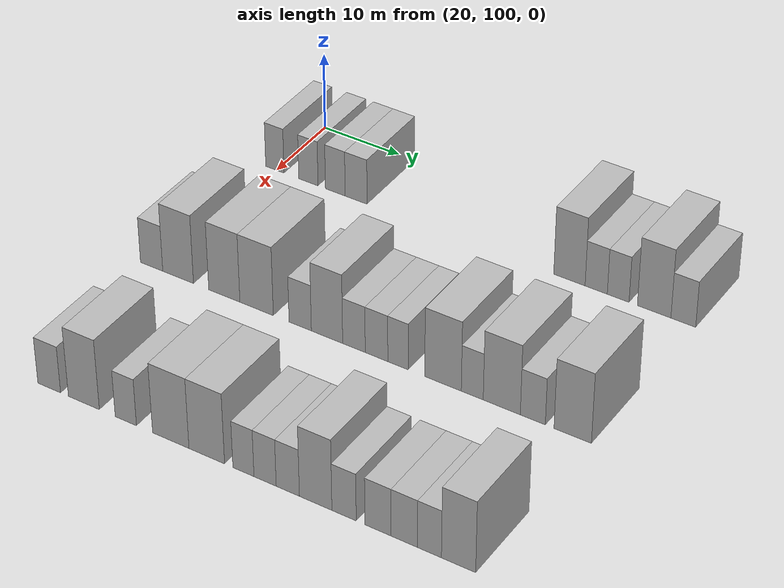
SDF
<sdf version="1.6">
 <world name="default">
  <model name="building_90">
   <static>1</static>
   <pose>25.0000 99.7196 0 0.000000 0.000000 0.000000</pose>
   <link name="link">
    <pose>0 0 3.00 0 0 0</pose>
    <collision name="collision"><geometry><box><size>10.0000 2.4901 6.0000</size></box></geometry></collision>
    <visual name="visual">
     <cast_shadows>0</cast_shadows>
     <geometry><box><size>10.0000 2.4901 6.0000</size></box></geometry>
     <material>
      <script>
       <uri>model://HANNAS_wall/materials/scripts</uri>
       <uri>model://HANNAS_wall/materials/textures</uri>
       <name>vrc/HANNAS_wall</name>
      </script>
     </material>
    </visual>
   </link>
  </model>
  <model name="building_91">
   <static>1</static>
   <pose>25.0000 104.2655 0 0.000000 0.000000 0.000000</pose>
   <link name="link">
    <pose>0 0 3.00 0 0 0</pose>
    <collision name="collision"><geometry><box><size>10.0000 2.6017 6.0000</size></box></geometry></collision>
    <visual name="visual">
     <cast_shadows>0</cast_shadows>
     <geometry><box><size>10.0000 2.6017 6.0000</size></box></geometry>
     <material>
      <script>
       <uri>model://HANNAS_wall/materials/scripts</uri>
       <uri>model://HANNAS_wall/materials/textures</uri>
       <name>vrc/HANNAS_wall</name>
      </script>
     </material>
    </visual>
   </link>
  </model>
  <model name="building_92">
   <static>1</static>
   <pose>25.0000 107.8807 0 0.000000 0.000000 0.000000</pose>
   <link name="link">
    <pose>0 0 3.00 0 0 0</pose>
    <collision name="collision"><geometry><box><size>10.0000 2.6288 6.0000</size></box></geometry></collision>
    <visual name="visual">
     <cast_shadows>0</cast_shadows>
     <geometry><box><size>10.0000 2.6288 6.0000</size></box></geometry>
     <material>
      <script>
       <uri>model://HANNAS_wall/materials/scripts</uri>
       <uri>model://HANNAS_wall/materials/textures</uri>
       <name>vrc/HANNAS_wall</name>
      </script>
     </material>
    </visual>
   </link>
  </model>
  <model name="building_93">
   <static>1</static>
   <pose>25.0000 110.6476 0 0.000000 0.000000 0.000000</pose>
   <link name="link">
    <pose>0 0 3.00 0 0 0</pose>
    <collision name="collision"><geometry><box><size>10.0000 2.9050 6.0000</size></box></geometry></collision>
    <visual name="visual">
     <cast_shadows>0</cast_shadows>
     <geometry><box><size>10.0000 2.9050 6.0000</size></box></geometry>
     <material>
      <script>
       <uri>model://HANNAS_wall/materials/scripts</uri>
       <uri>model://HANNAS_wall/materials/textures</uri>
       <name>vrc/HANNAS_wall</name>
      </script>
     </material>
    </visual>
   </link>
  </model>
  <model name="building_94">
   <static>1</static>
   <pose>25.0000 137.8790 0 0.000000 0.000000 0.000000</pose>
   <link name="link">
    <pose>0 0 4.50 0 0 0</pose>
    <collision name="collision"><geometry><box><size>10.0000 3.8525 9.0000</size></box></geometry></collision>
    <visual name="visual">
     <cast_shadows>0</cast_shadows>
     <geometry><box><size>10.0000 3.8525 9.0000</size></box></geometry>
     <material>
      <script>
       <uri>model://HANNAS_wall/materials/scripts</uri>
       <uri>model://HANNAS_wall/materials/textures</uri>
       <name>vrc/HANNAS_wall</name>
      </script>
     </material>
    </visual>
   </link>
  </model>
  <model name="building_95">
   <static>1</static>
   <pose>25.0000 141.1552 0 0.000000 0.000000 0.000000</pose>
   <link name="link">
    <pose>0 0 3.00 0 0 0</pose>
    <collision name="collision"><geometry><box><size>10.0000 2.7000 6.0000</size></box></geometry></collision>
    <visual name="visual">
     <cast_shadows>0</cast_shadows>
     <geometry><box><size>10.0000 2.7000 6.0000</size></box></geometry>
     <material>
      <script>
       <uri>model://HANNAS_wall/materials/scripts</uri>
       <uri>model://HANNAS_wall/materials/textures</uri>
       <name>vrc/HANNAS_wall</name>
      </script>
     </material>
    </visual>
   </link>
  </model>
  <model name="building_96">
   <static>1</static>
   <pose>25.0000 143.8195 0 0.000000 0.000000 0.000000</pose>
   <link name="link">
    <pose>0 0 3.00 0 0 0</pose>
    <collision name="collision"><geometry><box><size>10.0000 2.6285 6.0000</size></box></geometry></collision>
    <visual name="visual">
     <cast_shadows>0</cast_shadows>
     <geometry><box><size>10.0000 2.6285 6.0000</size></box></geometry>
     <material>
      <script>
       <uri>model://HANNAS_wall/materials/scripts</uri>
       <uri>model://HANNAS_wall/materials/textures</uri>
       <name>vrc/HANNAS_wall</name>
      </script>
     </material>
    </visual>
   </link>
  </model>
  <model name="building_97">
   <static>1</static>
   <pose>25.0000 148.1342 0 0.000000 0.000000 0.000000</pose>
   <link name="link">
    <pose>0 0 4.50 0 0 0</pose>
    <collision name="collision"><geometry><box><size>10.0000 4.0010 9.0000</size></box></geometry></collision>
    <visual name="visual">
     <cast_shadows>0</cast_shadows>
     <geometry><box><size>10.0000 4.0010 9.0000</size></box></geometry>
     <material>
      <script>
       <uri>model://HANNAS_wall/materials/scripts</uri>
       <uri>model://HANNAS_wall/materials/textures</uri>
       <name>vrc/HANNAS_wall</name>
      </script>
     </material>
    </visual>
   </link>
  </model>
  <model name="building_98">
   <static>1</static>
   <pose>25.0000 151.5983 0 0.000000 0.000000 0.000000</pose>
   <link name="link">
    <pose>0 0 3.00 0 0 0</pose>
    <collision name="collision"><geometry><box><size>10.0000 2.9272 6.0000</size></box></geometry></collision>
    <visual name="visual">
     <cast_shadows>0</cast_shadows>
     <geometry><box><size>10.0000 2.9272 6.0000</size></box></geometry>
     <material>
      <script>
       <uri>model://HANNAS_wall/materials/scripts</uri>
       <uri>model://HANNAS_wall/materials/textures</uri>
       <name>vrc/HANNAS_wall</name>
      </script>
     </material>
    </visual>
   </link>
  </model>
  <model name="building_212">
   <static>1</static>
   <pose>47.0000 98.6253 0 0.000000 0.000000 0.000000</pose>
   <link name="link">
    <pose>0 0 3.00 0 0 0</pose>
    <collision name="collision"><geometry><box><size>10.0000 2.9684 6.0000</size></box></geometry></collision>
    <visual name="visual">
     <cast_shadows>0</cast_shadows>
     <geometry><box><size>10.0000 2.9684 6.0000</size></box></geometry>
     <material>
      <script>
       <uri>model://HANNAS_wall/materials/scripts</uri>
       <uri>model://HANNAS_wall/materials/textures</uri>
       <name>vrc/HANNAS_wall</name>
      </script>
     </material>
    </visual>
   </link>
  </model>
  <model name="building_213">
   <static>1</static>
   <pose>47.0000 102.1371 0 0.000000 0.000000 0.000000</pose>
   <link name="link">
    <pose>0 0 4.50 0 0 0</pose>
    <collision name="collision"><geometry><box><size>10.0000 4.0552 9.0000</size></box></geometry></collision>
    <visual name="visual">
     <cast_shadows>0</cast_shadows>
     <geometry><box><size>10.0000 4.0552 9.0000</size></box></geometry>
     <material>
      <script>
       <uri>model://HANNAS_wall/materials/scripts</uri>
       <uri>model://HANNAS_wall/materials/textures</uri>
       <name>vrc/HANNAS_wall</name>
      </script>
     </material>
    </visual>
   </link>
  </model>
  <model name="building_214">
   <static>1</static>
   <pose>47.0000 108.1888 0 0.000000 0.000000 0.000000</pose>
   <link name="link">
    <pose>0 0 4.50 0 0 0</pose>
    <collision name="collision"><geometry><box><size>10.0000 4.0483 9.0000</size></box></geometry></collision>
    <visual name="visual">
     <cast_shadows>0</cast_shadows>
     <geometry><box><size>10.0000 4.0483 9.0000</size></box></geometry>
     <material>
      <script>
       <uri>model://HANNAS_wall/materials/scripts</uri>
       <uri>model://HANNAS_wall/materials/textures</uri>
       <name>vrc/HANNAS_wall</name>
      </script>
     </material>
    </visual>
   </link>
  </model>
  <model name="building_215">
   <static>1</static>
   <pose>47.0000 112.3559 0 0.000000 0.000000 0.000000</pose>
   <link name="link">
    <pose>0 0 4.50 0 0 0</pose>
    <collision name="collision"><geometry><box><size>10.0000 4.2857 9.0000</size></box></geometry></collision>
    <visual name="visual">
     <cast_shadows>0</cast_shadows>
     <geometry><box><size>10.0000 4.2857 9.0000</size></box></geometry>
     <material>
      <script>
       <uri>model://HANNAS_wall/materials/scripts</uri>
       <uri>model://HANNAS_wall/materials/textures</uri>
       <name>vrc/HANNAS_wall</name>
      </script>
     </material>
    </visual>
   </link>
  </model>
  <model name="building_216">
   <static>1</static>
   <pose>47.0000 117.9064 0 0.000000 0.000000 0.000000</pose>
   <link name="link">
    <pose>0 0 3.00 0 0 0</pose>
    <collision name="collision"><geometry><box><size>10.0000 2.8153 6.0000</size></box></geometry></collision>
    <visual name="visual">
     <cast_shadows>0</cast_shadows>
     <geometry><box><size>10.0000 2.8153 6.0000</size></box></geometry>
     <material>
      <script>
       <uri>model://HANNAS_wall/materials/scripts</uri>
       <uri>model://HANNAS_wall/materials/textures</uri>
       <name>vrc/HANNAS_wall</name>
      </script>
     </material>
    </visual>
   </link>
  </model>
  <model name="building_217">
   <static>1</static>
   <pose>47.0000 121.2693 0 0.000000 0.000000 0.000000</pose>
   <link name="link">
    <pose>0 0 4.50 0 0 0</pose>
    <collision name="collision"><geometry><box><size>10.0000 3.9105 9.0000</size></box></geometry></collision>
    <visual name="visual">
     <cast_shadows>0</cast_shadows>
     <geometry><box><size>10.0000 3.9105 9.0000</size></box></geometry>
     <material>
      <script>
       <uri>model://HANNAS_wall/materials/scripts</uri>
       <uri>model://HANNAS_wall/materials/textures</uri>
       <name>vrc/HANNAS_wall</name>
      </script>
     </material>
    </visual>
   </link>
  </model>
  <model name="building_218">
   <static>1</static>
   <pose>47.0000 124.6210 0 0.000000 0.000000 0.000000</pose>
   <link name="link">
    <pose>0 0 3.00 0 0 0</pose>
    <collision name="collision"><geometry><box><size>10.0000 2.7929 6.0000</size></box></geometry></collision>
    <visual name="visual">
     <cast_shadows>0</cast_shadows>
     <geometry><box><size>10.0000 2.7929 6.0000</size></box></geometry>
     <material>
      <script>
       <uri>model://HANNAS_wall/materials/scripts</uri>
       <uri>model://HANNAS_wall/materials/textures</uri>
       <name>vrc/HANNAS_wall</name>
      </script>
     </material>
    </visual>
   </link>
  </model>
  <model name="building_219">
   <static>1</static>
   <pose>47.0000 127.4013 0 0.000000 0.000000 0.000000</pose>
   <link name="link">
    <pose>0 0 3.00 0 0 0</pose>
    <collision name="collision"><geometry><box><size>10.0000 2.7678 6.0000</size></box></geometry></collision>
    <visual name="visual">
     <cast_shadows>0</cast_shadows>
     <geometry><box><size>10.0000 2.7678 6.0000</size></box></geometry>
     <material>
      <script>
       <uri>model://HANNAS_wall/materials/scripts</uri>
       <uri>model://HANNAS_wall/materials/textures</uri>
       <name>vrc/HANNAS_wall</name>
      </script>
     </material>
    </visual>
   </link>
  </model>
  <model name="building_220">
   <static>1</static>
   <pose>47.0000 130.0310 0 0.000000 0.000000 0.000000</pose>
   <link name="link">
    <pose>0 0 3.00 0 0 0</pose>
    <collision name="collision"><geometry><box><size>10.0000 2.4915 6.0000</size></box></geometry></collision>
    <visual name="visual">
     <cast_shadows>0</cast_shadows>
     <geometry><box><size>10.0000 2.4915 6.0000</size></box></geometry>
     <material>
      <script>
       <uri>model://HANNAS_wall/materials/scripts</uri>
       <uri>model://HANNAS_wall/materials/textures</uri>
       <name>vrc/HANNAS_wall</name>
      </script>
     </material>
    </visual>
   </link>
  </model>
  <model name="building_221">
   <static>1</static>
   <pose>47.0000 135.4652 0 0.000000 0.000000 0.000000</pose>
   <link name="link">
    <pose>0 0 4.50 0 0 0</pose>
    <collision name="collision"><geometry><box><size>10.0000 4.3771 9.0000</size></box></geometry></collision>
    <visual name="visual">
     <cast_shadows>0</cast_shadows>
     <geometry><box><size>10.0000 4.3771 9.0000</size></box></geometry>
     <material>
      <script>
       <uri>model://HANNAS_wall/materials/scripts</uri>
       <uri>model://HANNAS_wall/materials/textures</uri>
       <name>vrc/HANNAS_wall</name>
      </script>
     </material>
    </visual>
   </link>
  </model>
  <model name="building_222">
   <static>1</static>
   <pose>47.0000 138.9546 0 0.000000 0.000000 0.000000</pose>
   <link name="link">
    <pose>0 0 3.00 0 0 0</pose>
    <collision name="collision"><geometry><box><size>10.0000 2.6017 6.0000</size></box></geometry></collision>
    <visual name="visual">
     <cast_shadows>0</cast_shadows>
     <geometry><box><size>10.0000 2.6017 6.0000</size></box></geometry>
     <material>
      <script>
       <uri>model://HANNAS_wall/materials/scripts</uri>
       <uri>model://HANNAS_wall/materials/textures</uri>
       <name>vrc/HANNAS_wall</name>
      </script>
     </material>
    </visual>
   </link>
  </model>
  <model name="building_223">
   <static>1</static>
   <pose>47.0000 142.4318 0 0.000000 0.000000 0.000000</pose>
   <link name="link">
    <pose>0 0 4.50 0 0 0</pose>
    <collision name="collision"><geometry><box><size>10.0000 4.3525 9.0000</size></box></geometry></collision>
    <visual name="visual">
     <cast_shadows>0</cast_shadows>
     <geometry><box><size>10.0000 4.3525 9.0000</size></box></geometry>
     <material>
      <script>
       <uri>model://HANNAS_wall/materials/scripts</uri>
       <uri>model://HANNAS_wall/materials/textures</uri>
       <name>vrc/HANNAS_wall</name>
      </script>
     </material>
    </visual>
   </link>
  </model>
  <model name="building_224">
   <static>1</static>
   <pose>47.0000 146.0608 0 0.000000 0.000000 0.000000</pose>
   <link name="link">
    <pose>0 0 3.00 0 0 0</pose>
    <collision name="collision"><geometry><box><size>10.0000 2.9055 6.0000</size></box></geometry></collision>
    <visual name="visual">
     <cast_shadows>0</cast_shadows>
     <geometry><box><size>10.0000 2.9055 6.0000</size></box></geometry>
     <material>
      <script>
       <uri>model://HANNAS_wall/materials/scripts</uri>
       <uri>model://HANNAS_wall/materials/textures</uri>
       <name>vrc/HANNAS_wall</name>
      </script>
     </material>
    </visual>
   </link>
  </model>
  <model name="building_225">
   <static>1</static>
   <pose>47.0000 150.6540 0 0.000000 0.000000 0.000000</pose>
   <link name="link">
    <pose>0 0 4.50 0 0 0</pose>
    <collision name="collision"><geometry><box><size>10.0000 4.2809 9.0000</size></box></geometry></collision>
    <visual name="visual">
     <cast_shadows>0</cast_shadows>
     <geometry><box><size>10.0000 4.2809 9.0000</size></box></geometry>
     <material>
      <script>
       <uri>model://HANNAS_wall/materials/scripts</uri>
       <uri>model://HANNAS_wall/materials/textures</uri>
       <name>vrc/HANNAS_wall</name>
      </script>
     </material>
    </visual>
   </link>
  </model>
  <model name="building_334">
   <static>1</static>
   <pose>69.0000 101.8432 0 0.000000 0.000000 0.000000</pose>
   <link name="link">
    <pose>0 0 3.00 0 0 0</pose>
    <collision name="collision"><geometry><box><size>10.0000 2.9199 6.0000</size></box></geometry></collision>
    <visual name="visual">
     <cast_shadows>0</cast_shadows>
     <geometry><box><size>10.0000 2.9199 6.0000</size></box></geometry>
     <material>
      <script>
       <uri>model://HANNAS_wall/materials/scripts</uri>
       <uri>model://HANNAS_wall/materials/textures</uri>
       <name>vrc/HANNAS_wall</name>
      </script>
     </material>
    </visual>
   </link>
  </model>
  <model name="building_335">
   <static>1</static>
   <pose>69.0000 106.2682 0 0.000000 0.000000 0.000000</pose>
   <link name="link">
    <pose>0 0 4.50 0 0 0</pose>
    <collision name="collision"><geometry><box><size>10.0000 3.9301 9.0000</size></box></geometry></collision>
    <visual name="visual">
     <cast_shadows>0</cast_shadows>
     <geometry><box><size>10.0000 3.9301 9.0000</size></box></geometry>
     <material>
      <script>
       <uri>model://HANNAS_wall/materials/scripts</uri>
       <uri>model://HANNAS_wall/materials/textures</uri>
       <name>vrc/HANNAS_wall</name>
      </script>
     </material>
    </visual>
   </link>
  </model>
  <model name="building_336">
   <static>1</static>
   <pose>69.0000 111.5605 0 0.000000 0.000000 0.000000</pose>
   <link name="link">
    <pose>0 0 3.00 0 0 0</pose>
    <collision name="collision"><geometry><box><size>10.0000 2.6544 6.0000</size></box></geometry></collision>
    <visual name="visual">
     <cast_shadows>0</cast_shadows>
     <geometry><box><size>10.0000 2.6544 6.0000</size></box></geometry>
     <material>
      <script>
       <uri>model://HANNAS_wall/materials/scripts</uri>
       <uri>model://HANNAS_wall/materials/textures</uri>
       <name>vrc/HANNAS_wall</name>
      </script>
     </material>
    </visual>
   </link>
  </model>
  <model name="building_337">
   <static>1</static>
   <pose>69.0000 117.1214 0 0.000000 0.000000 0.000000</pose>
   <link name="link">
    <pose>0 0 4.50 0 0 0</pose>
    <collision name="collision"><geometry><box><size>10.0000 4.4673 9.0000</size></box></geometry></collision>
    <visual name="visual">
     <cast_shadows>0</cast_shadows>
     <geometry><box><size>10.0000 4.4673 9.0000</size></box></geometry>
     <material>
      <script>
       <uri>model://HANNAS_wall/materials/scripts</uri>
       <uri>model://HANNAS_wall/materials/textures</uri>
       <name>vrc/HANNAS_wall</name>
      </script>
     </material>
    </visual>
   </link>
  </model>
  <model name="building_338">
   <static>1</static>
   <pose>69.0000 121.5144 0 0.000000 0.000000 0.000000</pose>
   <link name="link">
    <pose>0 0 4.50 0 0 0</pose>
    <collision name="collision"><geometry><box><size>10.0000 4.3189 9.0000</size></box></geometry></collision>
    <visual name="visual">
     <cast_shadows>0</cast_shadows>
     <geometry><box><size>10.0000 4.3189 9.0000</size></box></geometry>
     <material>
      <script>
       <uri>model://HANNAS_wall/materials/scripts</uri>
       <uri>model://HANNAS_wall/materials/textures</uri>
       <name>vrc/HANNAS_wall</name>
      </script>
     </material>
    </visual>
   </link>
  </model>
  <model name="building_339">
   <static>1</static>
   <pose>69.0000 125.9340 0 0.000000 0.000000 0.000000</pose>
   <link name="link">
    <pose>0 0 3.00 0 0 0</pose>
    <collision name="collision"><geometry><box><size>10.0000 2.5203 6.0000</size></box></geometry></collision>
    <visual name="visual">
     <cast_shadows>0</cast_shadows>
     <geometry><box><size>10.0000 2.5203 6.0000</size></box></geometry>
     <material>
      <script>
       <uri>model://HANNAS_wall/materials/scripts</uri>
       <uri>model://HANNAS_wall/materials/textures</uri>
       <name>vrc/HANNAS_wall</name>
      </script>
     </material>
    </visual>
   </link>
  </model>
  <model name="building_340">
   <static>1</static>
   <pose>69.0000 128.5123 0 0.000000 0.000000 0.000000</pose>
   <link name="link">
    <pose>0 0 3.00 0 0 0</pose>
    <collision name="collision"><geometry><box><size>10.0000 2.6362 6.0000</size></box></geometry></collision>
    <visual name="visual">
     <cast_shadows>0</cast_shadows>
     <geometry><box><size>10.0000 2.6362 6.0000</size></box></geometry>
     <material>
      <script>
       <uri>model://HANNAS_wall/materials/scripts</uri>
       <uri>model://HANNAS_wall/materials/textures</uri>
       <name>vrc/HANNAS_wall</name>
      </script>
     </material>
    </visual>
   </link>
  </model>
  <model name="building_341">
   <static>1</static>
   <pose>69.0000 131.1961 0 0.000000 0.000000 0.000000</pose>
   <link name="link">
    <pose>0 0 3.00 0 0 0</pose>
    <collision name="collision"><geometry><box><size>10.0000 2.7315 6.0000</size></box></geometry></collision>
    <visual name="visual">
     <cast_shadows>0</cast_shadows>
     <geometry><box><size>10.0000 2.7315 6.0000</size></box></geometry>
     <material>
      <script>
       <uri>model://HANNAS_wall/materials/scripts</uri>
       <uri>model://HANNAS_wall/materials/textures</uri>
       <name>vrc/HANNAS_wall</name>
      </script>
     </material>
    </visual>
   </link>
  </model>
  <model name="building_342">
   <static>1</static>
   <pose>69.0000 134.4517 0 0.000000 0.000000 0.000000</pose>
   <link name="link">
    <pose>0 0 4.50 0 0 0</pose>
    <collision name="collision"><geometry><box><size>10.0000 3.7797 9.0000</size></box></geometry></collision>
    <visual name="visual">
     <cast_shadows>0</cast_shadows>
     <geometry><box><size>10.0000 3.7797 9.0000</size></box></geometry>
     <material>
      <script>
       <uri>model://HANNAS_wall/materials/scripts</uri>
       <uri>model://HANNAS_wall/materials/textures</uri>
       <name>vrc/HANNAS_wall</name>
      </script>
     </material>
    </visual>
   </link>
  </model>
  <model name="building_343">
   <static>1</static>
   <pose>69.0000 137.7426 0 0.000000 0.000000 0.000000</pose>
   <link name="link">
    <pose>0 0 3.00 0 0 0</pose>
    <collision name="collision"><geometry><box><size>10.0000 2.8020 6.0000</size></box></geometry></collision>
    <visual name="visual">
     <cast_shadows>0</cast_shadows>
     <geometry><box><size>10.0000 2.8020 6.0000</size></box></geometry>
     <material>
      <script>
       <uri>model://HANNAS_wall/materials/scripts</uri>
       <uri>model://HANNAS_wall/materials/textures</uri>
       <name>vrc/HANNAS_wall</name>
      </script>
     </material>
    </visual>
   </link>
  </model>
  <model name="building_344">
   <static>1</static>
   <pose>69.0000 141.6290 0 0.000000 0.000000 0.000000</pose>
   <link name="link">
    <pose>0 0 3.00 0 0 0</pose>
    <collision name="collision"><geometry><box><size>10.0000 2.9709 6.0000</size></box></geometry></collision>
    <visual name="visual">
     <cast_shadows>0</cast_shadows>
     <geometry><box><size>10.0000 2.9709 6.0000</size></box></geometry>
     <material>
      <script>
       <uri>model://HANNAS_wall/materials/scripts</uri>
       <uri>model://HANNAS_wall/materials/textures</uri>
       <name>vrc/HANNAS_wall</name>
      </script>
     </material>
    </visual>
   </link>
  </model>
  <model name="building_345">
   <static>1</static>
   <pose>69.0000 144.6026 0 0.000000 0.000000 0.000000</pose>
   <link name="link">
    <pose>0 0 3.00 0 0 0</pose>
    <collision name="collision"><geometry><box><size>10.0000 2.9763 6.0000</size></box></geometry></collision>
    <visual name="visual">
     <cast_shadows>0</cast_shadows>
     <geometry><box><size>10.0000 2.9763 6.0000</size></box></geometry>
     <material>
      <script>
       <uri>model://HANNAS_wall/materials/scripts</uri>
       <uri>model://HANNAS_wall/materials/textures</uri>
       <name>vrc/HANNAS_wall</name>
      </script>
     </material>
    </visual>
   </link>
  </model>
  <model name="building_346">
   <static>1</static>
   <pose>69.0000 147.4308 0 0.000000 0.000000 0.000000</pose>
   <link name="link">
    <pose>0 0 3.00 0 0 0</pose>
    <collision name="collision"><geometry><box><size>10.0000 2.6802 6.0000</size></box></geometry></collision>
    <visual name="visual">
     <cast_shadows>0</cast_shadows>
     <geometry><box><size>10.0000 2.6802 6.0000</size></box></geometry>
     <material>
      <script>
       <uri>model://HANNAS_wall/materials/scripts</uri>
       <uri>model://HANNAS_wall/materials/textures</uri>
       <name>vrc/HANNAS_wall</name>
      </script>
     </material>
    </visual>
   </link>
  </model>
  <model name="building_347">
   <static>1</static>
   <pose>69.0000 150.6653 0 0.000000 0.000000 0.000000</pose>
   <link name="link">
    <pose>0 0 4.50 0 0 0</pose>
    <collision name="collision"><geometry><box><size>10.0000 3.7888 9.0000</size></box></geometry></collision>
    <visual name="visual">
     <cast_shadows>0</cast_shadows>
     <geometry><box><size>10.0000 3.7888 9.0000</size></box></geometry>
     <material>
      <script>
       <uri>model://HANNAS_wall/materials/scripts</uri>
       <uri>model://HANNAS_wall/materials/textures</uri>
       <name>vrc/HANNAS_wall</name>
      </script>
     </material>
    </visual>
   </link>
  </model>
 </world>
</sdf>
